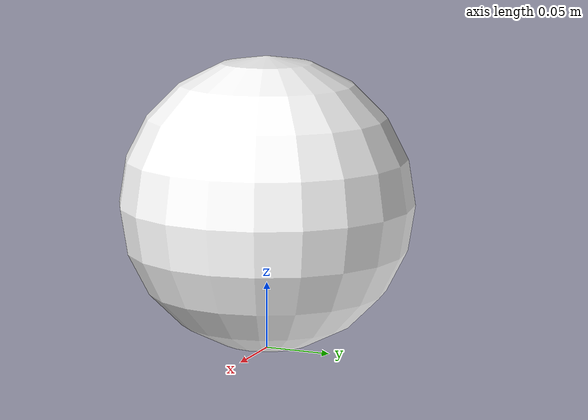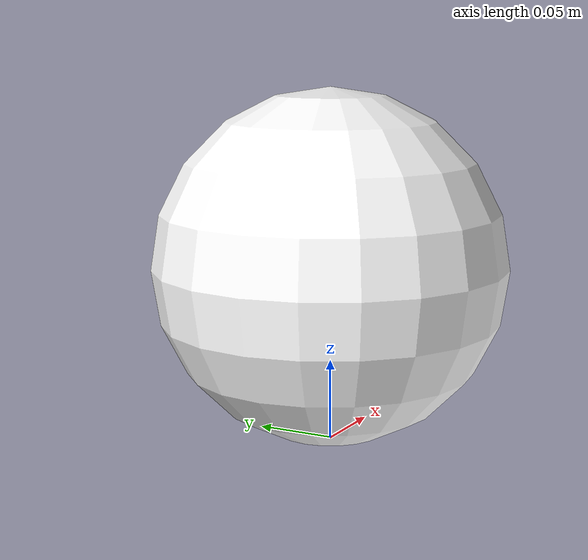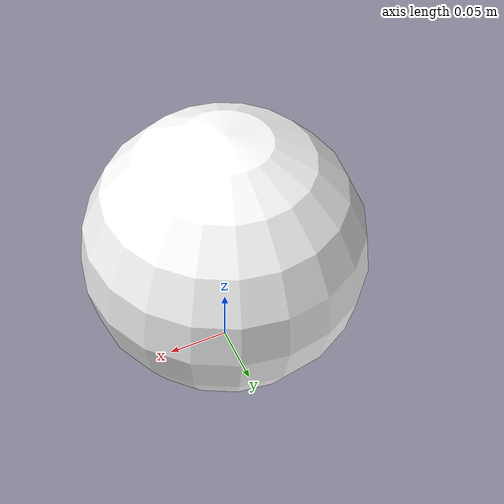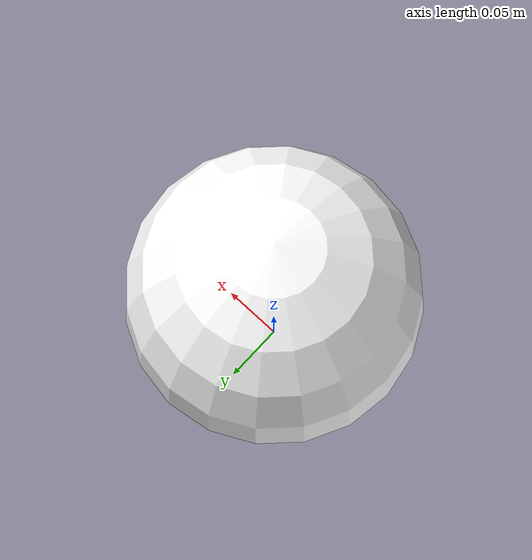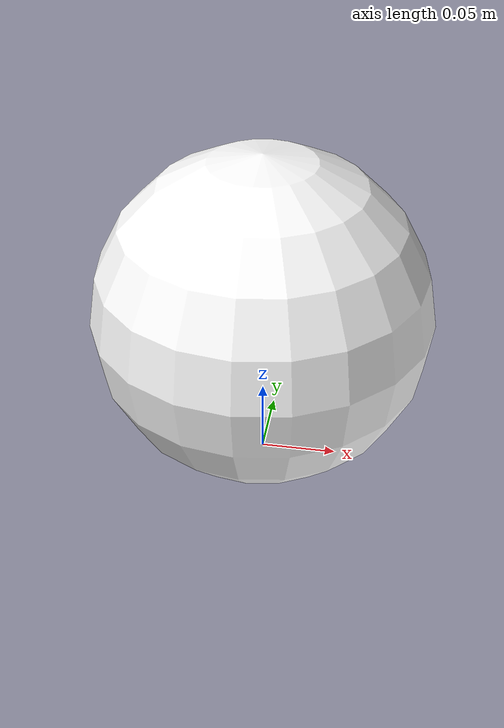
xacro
<?xml version="1.0"?>
<robot xmlns:xacro="http://www.ros.org/wiki/xacro" name="soccer_ball">

  <link name="base_link">
    <inertial>
      <origin xyz="0 0 0.11"/>
      <mass value="0.43"/>
      <inertia ixx="0.003" ixy="0.0" ixz="0.0" iyy="0.003" iyz="0.0" izz="0.003"/>
    </inertial>
    <visual>
      <origin xyz="0 0 0.11"/>
      <geometry>
        <sphere radius="0.11"/>
      </geometry>
      <material name="white">
        <color rgba="1.0 1.0 1.0 1.0"/>
      </material>
    </visual>
    <collision>
      <origin xyz="0 0 0.11"/>
      <geometry>
        <sphere radius="0.11"/>
      </geometry>
    </collision>
  </link>

  <gazebo reference="base_link">
    <material>Gazebo/White</material>
    <mu1>0.0</mu1>
    <mu2>0.0</mu2>
  </gazebo>

  <gazebo>
    <plugin name="ball_movement" filename="libgazebo_ros_planar_move.so">
      <ros>
        <namespace>ball</namespace>
        <remapping>cmd_vel:=cmd_vel</remapping>
        <remapping>odom:=odom</remapping>
      </ros>
      <update_rate>50.0</update_rate>
      <publish_rate>50.0</publish_rate>
      <publish_odom>true</publish_odom>
      <publish_odom_tf>true</publish_odom_tf>
      <odometry_frame>world</odometry_frame>
      <robot_base_frame>base_link</robot_base_frame>
    </plugin>
  </gazebo>

</robot>
